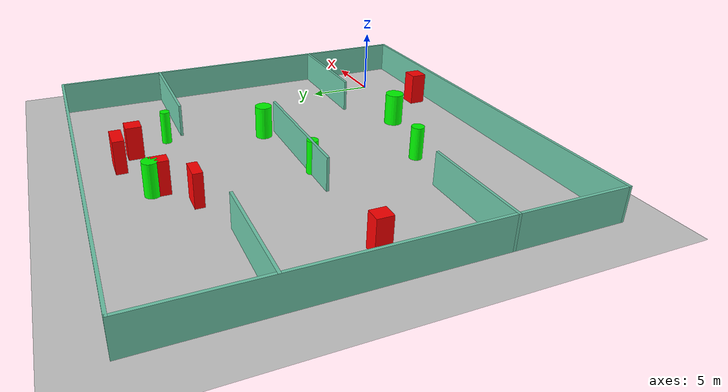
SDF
<sdf version="1.7">
 <world name="default">
  <light name="sun" type="directional">
   <pose>0 0 10 0 -0 0</pose>
   <diffuse>0.8 0.8 0.8 1</diffuse>
   <specular>0.2 0.2 0.2 1</specular>
   <attenuation>
    <range>1000</range>
    <constant>0.9</constant>
    <linear>0.01</linear>
    <quadratic>0.001</quadratic>
   </attenuation>
   <direction>-0.5 0.1 -0.9</direction>
   <spot><inner_angle>0</inner_angle><outer_angle>0</outer_angle><falloff>0</falloff></spot>
  </light>
  <model name="ground_plane">
   <static>1</static>
   <link name="link">
    <collision name="collision">
     <geometry><plane><normal>0 0 1</normal><size>100 100</size></plane></geometry>
     <surface>
      <contact><collide_bitmask>65535</collide_bitmask></contact>
      <friction><ode><mu>100</mu><mu2>50</mu2></ode></friction>
     </surface>
    </collision>
    <visual name="visual">
     <cast_shadows>0</cast_shadows>
     <geometry><plane><normal>0 0 1</normal><size>100 100</size></plane></geometry>
     <material>
      <script><uri>file://media/materials/scripts/gazebo.material</uri><name>Gazebo/Grey</name></script>
     </material>
    </visual>
   </link>
  </model>
  <gravity>0 0 -9.8</gravity>
  <magnetic_field>6e-06 2.3e-05 -4.2e-05</magnetic_field>
  <atmosphere type="adiabatic"/>
  <physics type="ode">
   <max_step_size>0.001</max_step_size>
   <real_time_factor>1</real_time_factor>
   <real_time_update_rate>1000</real_time_update_rate>
  </physics>
  <scene><ambient>0.4 0.4 0.4 1</ambient><background>0.7 0.7 0.7 1</background><shadows>1</shadows></scene>
  <spherical_coordinates>
   <surface_model>EARTH_WGS84</surface_model>
   <latitude_deg>0</latitude_deg>
   <longitude_deg>0</longitude_deg>
   <elevation>0</elevation>
   <heading_deg>0</heading_deg>
  </spherical_coordinates>
  <model name="my_base_walls">
   <link name="Wall_10">
    <collision name="Wall_10_Collision">
     <geometry><box><size>8.2 0.2 2.5</size></box></geometry>
     <pose>0 0 1.25 0 -0 0</pose>
    </collision>
    <visual name="Wall_10_Visual">
     <pose>0 0 1.25 0 -0 0</pose>
     <geometry><box><size>8.2 0.2 2.5</size></box></geometry>
     <material>
      <script><uri>file://media/materials/scripts/gazebo.material</uri><name>Gazebo/Grey</name></script>
      <ambient>0.435294 0.796078 0.67451 1</ambient>
     </material>
     <meta><layer>0</layer></meta>
    </visual>
    <pose>-11 -7 0 0 -0 0</pose>
   </link>
   <link name="Wall_12">
    <collision name="Wall_12_Collision">
     <geometry><box><size>8.2 0.2 2.5</size></box></geometry>
     <pose>0 0 1.25 0 -0 0</pose>
    </collision>
    <visual name="Wall_12_Visual">
     <pose>0 0 1.25 0 -0 0</pose>
     <geometry><box><size>8.2 0.2 2.5</size></box></geometry>
     <material>
      <script><uri>file://media/materials/scripts/gazebo.material</uri><name>Gazebo/Grey</name></script>
      <ambient>0.435294 0.796078 0.67451 1</ambient>
     </material>
     <meta><layer>0</layer></meta>
    </visual>
    <pose>-11 7 0 0 -0 0</pose>
   </link>
   <link name="Wall_14">
    <collision name="Wall_14_Collision">
     <geometry><box><size>8.2 0.2 2.5</size></box></geometry>
     <pose>0 0 1.25 0 -0 0</pose>
    </collision>
    <visual name="Wall_14_Visual">
     <pose>0 0 1.25 0 -0 0</pose>
     <geometry><box><size>8.2 0.2 2.5</size></box></geometry>
     <material>
      <script><uri>file://media/materials/scripts/gazebo.material</uri><name>Gazebo/Grey</name></script>
      <ambient>0.435294 0.796078 0.67451 1</ambient>
     </material>
     <meta><layer>0</layer></meta>
    </visual>
    <pose>11 7 0 0 -0 3.14159</pose>
   </link>
   <link name="Wall_16">
    <collision name="Wall_16_Collision">
     <geometry><box><size>10.2 0.2 2.5</size></box></geometry>
     <pose>0 0 1.25 0 -0 0</pose>
    </collision>
    <visual name="Wall_16_Visual">
     <pose>0 0 1.25 0 -0 0</pose>
     <geometry><box><size>10.2 0.2 2.5</size></box></geometry>
     <material>
      <script><uri>file://media/materials/scripts/gazebo.material</uri><name>Gazebo/Grey</name></script>
      <ambient>0.435294 0.796078 0.67451 1</ambient>
     </material>
     <meta><layer>0</layer></meta>
    </visual>
    <pose>0 0 0 0 -0 3.14159</pose>
   </link>
   <link name="Wall_2">
    <collision name="Wall_2_Collision">
     <geometry><box><size>30.2 0.2 2.5</size></box></geometry>
     <pose>0 0 1.25 0 -0 0</pose>
    </collision>
    <visual name="Wall_2_Visual">
     <pose>0 0 1.25 0 -0 0</pose>
     <geometry><box><size>30.2 0.2 2.5</size></box></geometry>
     <material>
      <script><uri>file://media/materials/scripts/gazebo.material</uri><name>Gazebo/Grey</name></script>
      <ambient>0.435294 0.796078 0.67451 1</ambient>
     </material>
     <meta><layer>0</layer></meta>
    </visual>
    <pose>0 -15 0 0 -0 3.14159</pose>
   </link>
   <link name="Wall_3">
    <collision name="Wall_3_Collision">
     <geometry><box><size>30.2 0.2 2.5</size></box></geometry>
     <pose>0 0 1.25 0 -0 0</pose>
    </collision>
    <visual name="Wall_3_Visual">
     <pose>0 0 1.25 0 -0 0</pose>
     <geometry><box><size>30.2 0.2 2.5</size></box></geometry>
     <material>
      <script><uri>file://media/materials/scripts/gazebo.material</uri><name>Gazebo/Grey</name></script>
      <ambient>0.435294 0.796078 0.67451 1</ambient>
     </material>
     <meta><layer>0</layer></meta>
    </visual>
    <pose>-15 0 0 0 -0 1.5708</pose>
   </link>
   <link name="Wall_4">
    <collision name="Wall_4_Collision">
     <geometry><box><size>30.2 0.2 2.5</size></box></geometry>
     <pose>0 0 1.25 0 -0 0</pose>
    </collision>
    <visual name="Wall_4_Visual">
     <pose>0 0 1.25 0 -0 0</pose>
     <geometry><box><size>30.2 0.2 2.5</size></box></geometry>
     <material>
      <script><uri>file://media/materials/scripts/gazebo.material</uri><name>Gazebo/Grey</name></script>
      <ambient>0.435294 0.796078 0.67451 1</ambient>
     </material>
     <meta><layer>0</layer></meta>
    </visual>
    <pose>0 15 0 0 -0 0</pose>
   </link>
   <link name="Wall_6">
    <collision name="Wall_6_Collision">
     <geometry><box><size>30.2 0.2 2.5</size></box></geometry>
     <pose>0 0 1.25 0 -0 0</pose>
    </collision>
    <visual name="Wall_6_Visual">
     <pose>0 0 1.25 0 -0 0</pose>
     <geometry><box><size>30.2 0.2 2.5</size></box></geometry>
     <material>
      <script><uri>file://media/materials/scripts/gazebo.material</uri><name>Gazebo/Grey</name></script>
      <ambient>0.435294 0.796078 0.67451 1</ambient>
     </material>
     <meta><layer>0</layer></meta>
    </visual>
    <pose>15 0 0 0 -0 1.5708</pose>
   </link>
   <link name="Wall_8">
    <collision name="Wall_8_Collision">
     <geometry><box><size>8.2 0.2 2.5</size></box></geometry>
     <pose>0 0 1.25 0 -0 0</pose>
    </collision>
    <visual name="Wall_8_Visual">
     <pose>0 0 1.25 0 -0 0</pose>
     <geometry><box><size>8.2 0.2 2.5</size></box></geometry>
     <material>
      <script><uri>file://media/materials/scripts/gazebo.material</uri><name>Gazebo/Grey</name></script>
      <ambient>0.435294 0.796078 0.67451 1</ambient>
     </material>
     <meta><layer>0</layer></meta>
    </visual>
    <pose>11 -7 0 0 -0 3.14159</pose>
   </link>
   <static>1</static>
   <pose>-11 11 0 0 -0 0</pose>
  </model>
  <model name="cylinder1">
   <static>1</static>
   <link name="link">
    <inertial>
     <mass>1</mass>
     <inertia><ixx>0.5</ixx><ixy>0</ixy><ixz>0</ixz><iyy>0.5</iyy><iyz>0</iyz><izz>1</izz></inertia>
    </inertial>
    <collision name="collision">
     <geometry><cylinder><radius>0.5608773853245919</radius><length>2.5</length></cylinder></geometry>
    </collision>
    <visual name="visual">
     <geometry><cylinder><radius>0.5608773853245919</radius><length>2.5</length></cylinder></geometry>
     <material>
      <ambient>0 1 0 1</ambient>
      <diffuse>0 1 0 1</diffuse>
      <specular>0.1 0.1 0.1 1</specular>
      <emissive>0 0 0 0</emissive>
     </material>
    </visual>
   </link>
   <pose>-12.281512448440495 21.71563039335473 1.25 0 0 0</pose>
  </model>
  <model name="cylinder2">
   <static>1</static>
   <link name="link">
    <inertial>
     <mass>1</mass>
     <inertia><ixx>0.5</ixx><ixy>0</ixy><ixz>0</ixz><iyy>0.5</iyy><iyz>0</iyz><izz>1</izz></inertia>
    </inertial>
    <collision name="collision">
     <geometry><cylinder><radius>0.695026827945629</radius><length>2.5</length></cylinder></geometry>
    </collision>
    <visual name="visual">
     <geometry><cylinder><radius>0.695026827945629</radius><length>2.5</length></cylinder></geometry>
     <material>
      <ambient>0 1 0 1</ambient>
      <diffuse>0 1 0 1</diffuse>
      <specular>0.1 0.1 0.1 1</specular>
      <emissive>0 0 0 0</emissive>
     </material>
    </visual>
   </link>
   <pose>-7.912864720473751 1.5002294373556362 1.25 0 0 0</pose>
  </model>
  <model name="cylinder3">
   <static>1</static>
   <link name="link">
    <inertial>
     <mass>1</mass>
     <inertia><ixx>0.5</ixx><ixy>0</ixy><ixz>0</ixz><iyy>0.5</iyy><iyz>0</iyz><izz>1</izz></inertia>
    </inertial>
    <collision name="collision">
     <geometry><cylinder><radius>0.6274374151393504</radius><length>2.5</length></cylinder></geometry>
    </collision>
    <visual name="visual">
     <geometry><cylinder><radius>0.6274374151393504</radius><length>2.5</length></cylinder></geometry>
     <material>
      <ambient>0 1 0 1</ambient>
      <diffuse>0 1 0 1</diffuse>
      <specular>0.1 0.1 0.1 1</specular>
      <emissive>0 0 0 0</emissive>
     </material>
    </visual>
   </link>
   <pose>-6.449297171836218 12.07954377256517 1.25 0 0 0</pose>
  </model>
  <model name="cylinder4">
   <static>1</static>
   <link name="link">
    <inertial>
     <mass>1</mass>
     <inertia><ixx>0.5</ixx><ixy>0</ixy><ixz>0</ixz><iyy>0.5</iyy><iyz>0</iyz><izz>1</izz></inertia>
    </inertial>
    <collision name="collision">
     <geometry><cylinder><radius>0.41364902956463817</radius><length>2.5</length></cylinder></geometry>
    </collision>
    <visual name="visual">
     <geometry><cylinder><radius>0.41364902956463817</radius><length>2.5</length></cylinder></geometry>
     <material>
      <ambient>0 1 0 1</ambient>
      <diffuse>0 1 0 1</diffuse>
      <specular>0.1 0.1 0.1 1</specular>
      <emissive>0 0 0 0</emissive>
     </material>
    </visual>
   </link>
   <pose>-13.293002131907532 10.907487211949386 1.25 0 0 0</pose>
  </model>
  <model name="cylinder5">
   <static>1</static>
   <link name="link">
    <inertial>
     <mass>1</mass>
     <inertia><ixx>0.5</ixx><ixy>0</ixy><ixz>0</ixz><iyy>0.5</iyy><iyz>0</iyz><izz>1</izz></inertia>
    </inertial>
    <collision name="collision">
     <geometry><cylinder><radius>0.47537277765313496</radius><length>2.5</length></cylinder></geometry>
    </collision>
    <visual name="visual">
     <geometry><cylinder><radius>0.47537277765313496</radius><length>2.5</length></cylinder></geometry>
     <material>
      <ambient>0 1 0 1</ambient>
      <diffuse>0 1 0 1</diffuse>
      <specular>0.1 0.1 0.1 1</specular>
      <emissive>0 0 0 0</emissive>
     </material>
    </visual>
   </link>
   <pose>-14.058933439603852 3.1051382570885657 1.25 0 0 0</pose>
  </model>
  <model name="cylinder6">
   <static>1</static>
   <link name="link">
    <inertial>
     <mass>1</mass>
     <inertia><ixx>0.5</ixx><ixy>0</ixy><ixz>0</ixz><iyy>0.5</iyy><iyz>0</iyz><izz>1</izz></inertia>
    </inertial>
    <collision name="collision">
     <geometry><cylinder><radius>0.36298259764261553</radius><length>2.5</length></cylinder></geometry>
    </collision>
    <visual name="visual">
     <geometry><cylinder><radius>0.36298259764261553</radius><length>2.5</length></cylinder></geometry>
     <material>
      <ambient>0 1 0 1</ambient>
      <diffuse>0 1 0 1</diffuse>
      <specular>0.1 0.1 0.1 1</specular>
      <emissive>0 0 0 0</emissive>
     </material>
    </visual>
   </link>
   <pose>-4.753861339539766 19.29945731970477 1.25 0 0 0</pose>
  </model>
  <model name="box1">
   <static>1</static>
   <link name="link">
    <inertial>
     <mass>1</mass>
     <inertia><ixx>0.083</ixx><ixy>0</ixy><ixz>0</ixz><iyy>0.083</iyy><iyz>0</iyz><izz>0.083</izz></inertia>
    </inertial>
    <collision name="collision">
     <geometry><box><size>1.0221058158801206 1.130342262871224 2.5</size></box></geometry>
    </collision>
    <visual name="visual">
     <geometry><box><size>1.0221058158801206 1.130342262871224 2.5</size></box></geometry>
     <material>
      <ambient>1 0 0 1</ambient>
      <diffuse>1 0 0 1</diffuse>
      <specular>0.1 0.1 0.1 1</specular>
      <emissive>0 0 0 0</emissive>
     </material>
    </visual>
    <sensor name="my_contact" type="contact">
     <contact><collision>box_collision</collision><topic>__default_topic__</topic></contact>
    </sensor>
   </link>
   <pose>-23.16332491399324 10.99196966540302 1.25 0 0 0</pose>
  </model>
  <model name="box2">
   <static>1</static>
   <link name="link">
    <inertial>
     <mass>1</mass>
     <inertia><ixx>0.083</ixx><ixy>0</ixy><ixz>0</ixz><iyy>0.083</iyy><iyz>0</iyz><izz>0.083</izz></inertia>
    </inertial>
    <collision name="collision">
     <geometry><box><size>1.95476343248832 0.8246701909973002 2.5</size></box></geometry>
    </collision>
    <visual name="visual">
     <geometry><box><size>1.95476343248832 0.8246701909973002 2.5</size></box></geometry>
     <material>
      <ambient>1 0 0 1</ambient>
      <diffuse>1 0 0 1</diffuse>
      <specular>0.1 0.1 0.1 1</specular>
      <emissive>0 0 0 0</emissive>
     </material>
    </visual>
    <sensor name="my_contact" type="contact">
     <contact><collision>box_collision</collision><topic>__default_topic__</topic></contact>
    </sensor>
   </link>
   <pose>-7.726567298965064 23.19588903136214 1.25 0 0 0</pose>
  </model>
  <model name="box3">
   <static>1</static>
   <link name="link">
    <inertial>
     <mass>1</mass>
     <inertia><ixx>0.083</ixx><ixy>0</ixy><ixz>0</ixz><iyy>0.083</iyy><iyz>0</iyz><izz>0.083</izz></inertia>
    </inertial>
    <collision name="collision">
     <geometry><box><size>1.222872695535937 1.198331289993357 2.5</size></box></geometry>
    </collision>
    <visual name="visual">
     <geometry><box><size>1.222872695535937 1.198331289993357 2.5</size></box></geometry>
     <material>
      <ambient>1 0 0 1</ambient>
      <diffuse>1 0 0 1</diffuse>
      <specular>0.1 0.1 0.1 1</specular>
      <emissive>0 0 0 0</emissive>
     </material>
    </visual>
    <sensor name="my_contact" type="contact">
     <contact><collision>box_collision</collision><topic>__default_topic__</topic></contact>
    </sensor>
   </link>
   <pose>-4.442319442605024 -2.516865676928486 1.25 0 0 0</pose>
  </model>
  <model name="box4">
   <static>1</static>
   <link name="link">
    <inertial>
     <mass>1</mass>
     <inertia><ixx>0.083</ixx><ixy>0</ixy><ixz>0</ixz><iyy>0.083</iyy><iyz>0</iyz><izz>0.083</izz></inertia>
    </inertial>
    <collision name="collision">
     <geometry><box><size>0.9330083802435574 1.184390611321036 2.5</size></box></geometry>
    </collision>
    <visual name="visual">
     <geometry><box><size>0.9330083802435574 1.184390611321036 2.5</size></box></geometry>
     <material>
      <ambient>1 0 0 1</ambient>
      <diffuse>1 0 0 1</diffuse>
      <specular>0.1 0.1 0.1 1</specular>
      <emissive>0 0 0 0</emissive>
     </material>
    </visual>
    <sensor name="my_contact" type="contact">
     <contact><collision>box_collision</collision><topic>__default_topic__</topic></contact>
    </sensor>
   </link>
   <pose>-12.214954502263097 21.147078599151225 1.25 0 0 0</pose>
  </model>
  <model name="box5">
   <static>1</static>
   <link name="link">
    <inertial>
     <mass>1</mass>
     <inertia><ixx>0.083</ixx><ixy>0</ixy><ixz>0</ixz><iyy>0.083</iyy><iyz>0</iyz><izz>0.083</izz></inertia>
    </inertial>
    <collision name="collision">
     <geometry><box><size>1.577503413985053 0.6850672389915093 2.5</size></box></geometry>
    </collision>
    <visual name="visual">
     <geometry><box><size>1.577503413985053 0.6850672389915093 2.5</size></box></geometry>
     <material>
      <ambient>1 0 0 1</ambient>
      <diffuse>1 0 0 1</diffuse>
      <specular>0.1 0.1 0.1 1</specular>
      <emissive>0 0 0 0</emissive>
     </material>
    </visual>
    <sensor name="my_contact" type="contact">
     <contact><collision>box_collision</collision><topic>__default_topic__</topic></contact>
    </sensor>
   </link>
   <pose>-14.269595219754862 19.27438252826193 1.25 0 0 0</pose>
  </model>
  <model name="box6">
   <static>1</static>
   <link name="link">
    <inertial>
     <mass>1</mass>
     <inertia><ixx>0.083</ixx><ixy>0</ixy><ixz>0</ixz><iyy>0.083</iyy><iyz>0</iyz><izz>0.083</izz></inertia>
    </inertial>
    <collision name="collision">
     <geometry><box><size>1.151409613466127 1.1470308086360543 2.5</size></box></geometry>
    </collision>
    <visual name="visual">
     <geometry><box><size>1.151409613466127 1.1470308086360543 2.5</size></box></geometry>
     <material>
      <ambient>1 0 0 1</ambient>
      <diffuse>1 0 0 1</diffuse>
      <specular>0.1 0.1 0.1 1</specular>
      <emissive>0 0 0 0</emissive>
     </material>
    </visual>
    <sensor name="my_contact" type="contact">
     <contact><collision>box_collision</collision><topic>__default_topic__</topic></contact>
    </sensor>
   </link>
   <pose>-6.2665873745953355 21.89291222900521 1.25 0 0 0</pose>
  </model>
 </world>
</sdf>
